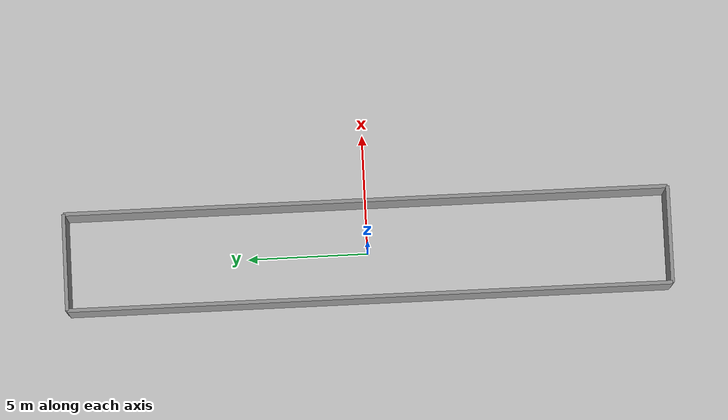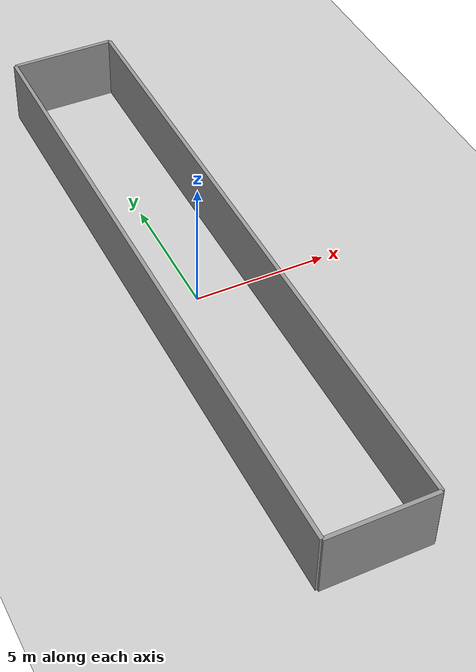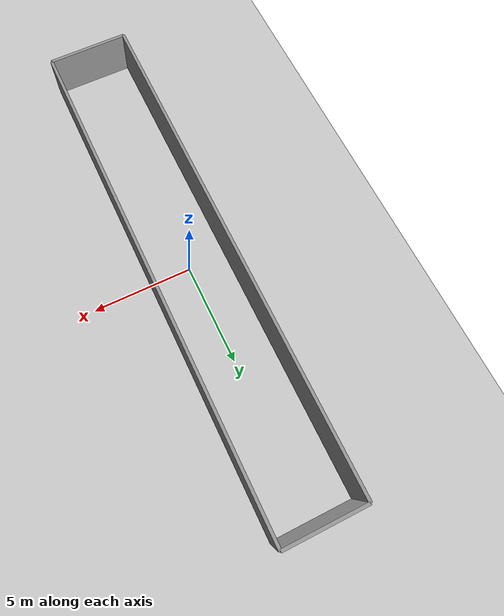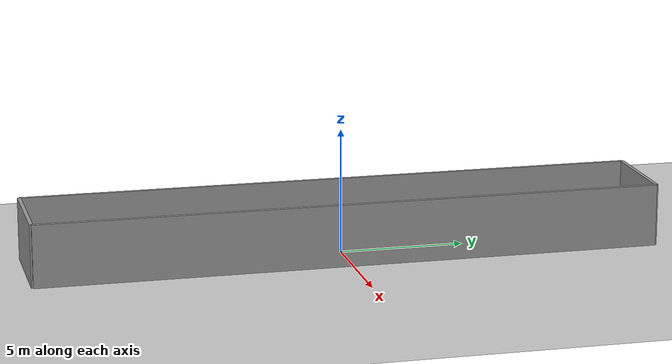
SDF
<?xml version="1.0"?>
<sdf version="1.6">
  <world name="default">

    <light name='sun' type='directional'>
      <cast_shadows>1</cast_shadows>
      <pose frame=''>0 0 10 0 -0 0</pose>
      <diffuse>0.8 0.8 0.8 1</diffuse>
      <specular>0.2 0.2 0.2 1</specular>
      <attenuation>
        <range>1000</range>
        <constant>0.9</constant>
        <linear>0.01</linear>
        <quadratic>0.001</quadratic>
      </attenuation>
      <direction>-0.5 0.1 -0.9</direction>
    </light>

    <model name='ground_plane'>
      <static>1</static>
      <link name='link'>
        <collision name='collision'>
          <geometry><plane><normal>0 0 1</normal><size>100 100</size></plane></geometry>
          <surface>
            <friction><ode><mu>100</mu><mu2>50</mu2></ode><torsional><ode/></torsional></friction>
            <contact><ode/></contact><bounce/>
          </surface>
          <max_contacts>10</max_contacts>
        </collision>
        <visual name='visual'>
          <cast_shadows>0</cast_shadows>
          <geometry><plane><normal>0 0 1</normal><size>100 100</size></plane></geometry>
          <material><script><uri>file://media/materials/scripts/gazebo.material</uri><name>Gazebo/Grey</name></script></material>
        </visual>
        <self_collide>0</self_collide><enable_wind>0</enable_wind><kinematic>0</kinematic>
      </link>
    </model>

    <gravity>0 0 -9.8</gravity>
    <magnetic_field>6e-06 2.3e-05 -4.2e-05</magnetic_field>
    <atmosphere type='adiabatic'/>
    <physics name='default_physics' default='0' type='ode'>
      <max_step_size>0.001</max_step_size>
      <real_time_factor>1</real_time_factor>
      <real_time_update_rate>1000</real_time_update_rate>
    </physics>
    <scene>
      <ambient>0.4 0.4 0.4 1</ambient>
      <background>0.7 0.7 0.7 1</background>
      <shadows>1</shadows>
    </scene>
    <audio><device>default</device></audio>
    <wind/>
    <spherical_coordinates>
      <surface_model>EARTH_WGS84</surface_model>
      <latitude_deg>0</latitude_deg><longitude_deg>0</longitude_deg>
      <elevation>0</elevation><heading_deg>0</heading_deg>
    </spherical_coordinates>

    <model name='corridor'>
      <pose frame=''>0 0 0 0 0 0</pose>
      <static>1</static>

      <!-- 북쪽 벽 y=12.5, 길이 4m -->
      <link name='Wall_N'>
        <collision name='Wall_N_Collision'>
          <geometry><box><size>4 0.15 2.5</size></box></geometry>
          <pose frame=''>0 0 1.25 0 0 0</pose>
          <max_contacts>10</max_contacts>
          <surface><contact><ode/></contact><bounce/><friction><torsional><ode/></torsional><ode/></friction></surface>
        </collision>
        <visual name='Wall_N_Visual'>
          <pose frame=''>0 0 1.25 0 0 0</pose>
          <geometry><box><size>4 0.15 2.5</size></box></geometry>
          <material><script><uri>file://media/materials/scripts/gazebo.material</uri><name>Gazebo/Grey</name></script><ambient>1 1 1 1</ambient></material>
        </visual>
        <pose frame=''>0 12.5 0 0 0 0</pose>
        <self_collide>0</self_collide><enable_wind>0</enable_wind><kinematic>0</kinematic>
      </link>

      <!-- 남쪽 벽 y=-12.5, 길이 4m -->
      <link name='Wall_S'>
        <collision name='Wall_S_Collision'>
          <geometry><box><size>4 0.15 2.5</size></box></geometry>
          <pose frame=''>0 0 1.25 0 0 0</pose>
          <max_contacts>10</max_contacts>
          <surface><contact><ode/></contact><bounce/><friction><torsional><ode/></torsional><ode/></friction></surface>
        </collision>
        <visual name='Wall_S_Visual'>
          <pose frame=''>0 0 1.25 0 0 0</pose>
          <geometry><box><size>4 0.15 2.5</size></box></geometry>
          <material><script><uri>file://media/materials/scripts/gazebo.material</uri><name>Gazebo/Grey</name></script><ambient>1 1 1 1</ambient></material>
        </visual>
        <pose frame=''>0 -12.5 0 0 0 0</pose>
        <self_collide>0</self_collide><enable_wind>0</enable_wind><kinematic>0</kinematic>
      </link>

      <!-- 동쪽 벽 x=2, 길이 25m -->
      <link name='Wall_E'>
        <collision name='Wall_E_Collision'>
          <geometry><box><size>0.15 25 2.5</size></box></geometry>
          <pose frame=''>0 0 1.25 0 0 0</pose>
          <max_contacts>10</max_contacts>
          <surface><contact><ode/></contact><bounce/><friction><torsional><ode/></torsional><ode/></friction></surface>
        </collision>
        <visual name='Wall_E_Visual'>
          <pose frame=''>0 0 1.25 0 0 0</pose>
          <geometry><box><size>0.15 25 2.5</size></box></geometry>
          <material><script><uri>file://media/materials/scripts/gazebo.material</uri><name>Gazebo/Grey</name></script><ambient>1 1 1 1</ambient></material>
        </visual>
        <pose frame=''>2 0 0 0 0 0</pose>
        <self_collide>0</self_collide><enable_wind>0</enable_wind><kinematic>0</kinematic>
      </link>

      <!-- 서쪽 벽 x=-2, 길이 25m -->
      <link name='Wall_W'>
        <collision name='Wall_W_Collision'>
          <geometry><box><size>0.15 25 2.5</size></box></geometry>
          <pose frame=''>0 0 1.25 0 0 0</pose>
          <max_contacts>10</max_contacts>
          <surface><contact><ode/></contact><bounce/><friction><torsional><ode/></torsional><ode/></friction></surface>
        </collision>
        <visual name='Wall_W_Visual'>
          <pose frame=''>0 0 1.25 0 0 0</pose>
          <geometry><box><size>0.15 25 2.5</size></box></geometry>
          <material><script><uri>file://media/materials/scripts/gazebo.material</uri><name>Gazebo/Grey</name></script><ambient>1 1 1 1</ambient></material>
        </visual>
        <pose frame=''>-2 0 0 0 0 0</pose>
        <self_collide>0</self_collide><enable_wind>0</enable_wind><kinematic>0</kinematic>
      </link>

    </model>

    <gui fullscreen='0'>
      <camera name='user_camera'>
        <pose frame=''>0 0 35 0 1.5707 0</pose>
        <view_controller>orbit</view_controller>
        <projection_type>perspective</projection_type>
      </camera>
    </gui>

  </world>
</sdf>
